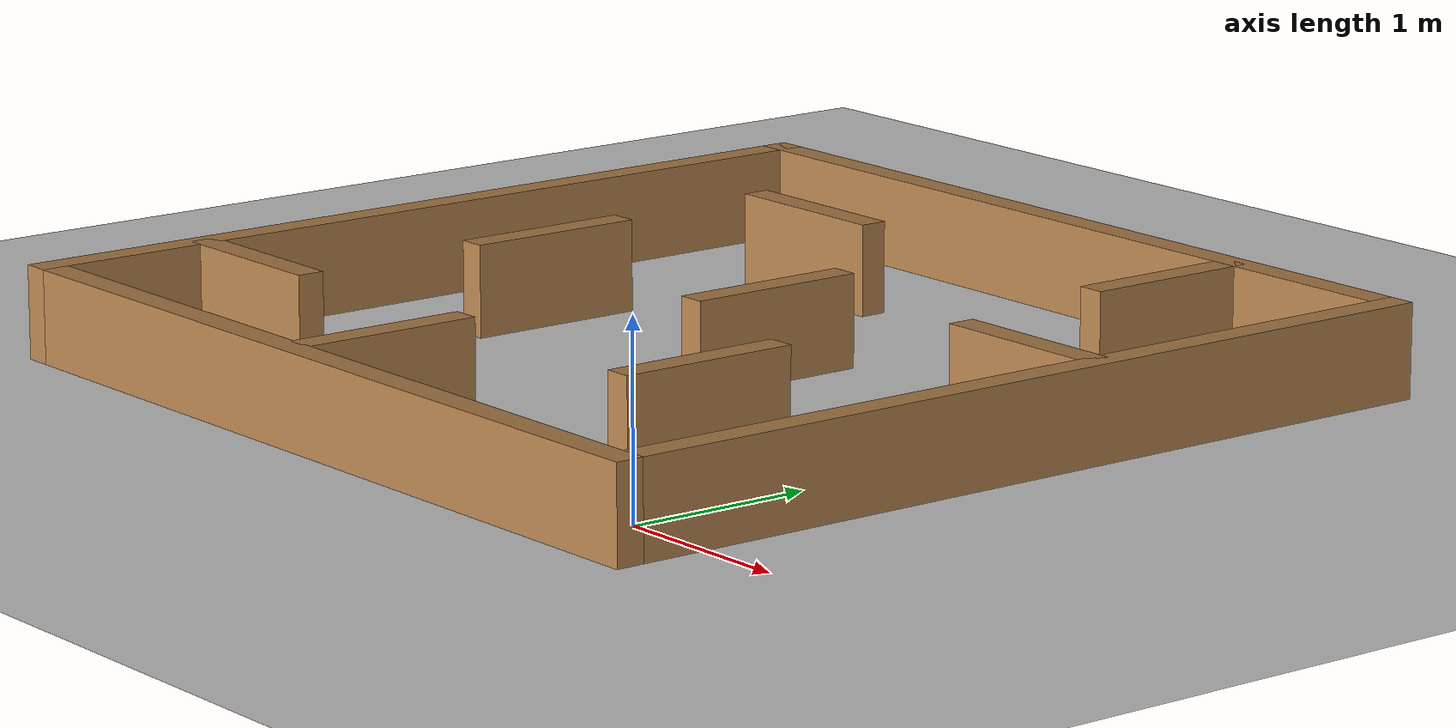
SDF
<sdf version="1.7">
 <world name="default">
  <light name="sun" type="directional">
   <pose>0 0 10 0 -0 0</pose>
   <diffuse>0.8 0.8 0.8 1</diffuse>
   <specular>0.2 0.2 0.2 1</specular>
   <attenuation>
    <range>1000</range>
    <constant>0.9</constant>
    <linear>0.01</linear>
    <quadratic>0.001</quadratic>
   </attenuation>
   <direction>-0.5 0.1 -0.9</direction>
   <spot><inner_angle>0</inner_angle><outer_angle>0</outer_angle><falloff>0</falloff></spot>
  </light>
  <model name="ground_plane">
   <static>1</static>
   <link name="link">
    <collision name="collision">
     <geometry><plane><normal>0 0 1</normal><size>100 100</size></plane></geometry>
     <surface>
      <contact><collide_bitmask>65535</collide_bitmask></contact>
      <friction><ode><mu>100</mu><mu2>50</mu2></ode></friction>
     </surface>
    </collision>
    <visual name="visual">
     <cast_shadows>0</cast_shadows>
     <geometry><plane><normal>0 0 1</normal><size>100 100</size></plane></geometry>
     <material>
      <script><uri>file://media/materials/scripts/gazebo.material</uri><name>Gazebo/Grey</name></script>
     </material>
    </visual>
   </link>
  </model>
  <gravity>0 0 -9.8</gravity>
  <magnetic_field>6e-06 2.3e-05 -4.2e-05</magnetic_field>
  <atmosphere type="adiabatic"/>
  <physics type="ode">
   <max_step_size>0.001</max_step_size>
   <real_time_factor>1</real_time_factor>
   <real_time_update_rate>1000</real_time_update_rate>
  </physics>
  <scene><ambient>0.4 0.4 0.4 1</ambient><background>0.7 0.7 0.7 1</background><shadows>1</shadows></scene>
  <spherical_coordinates>
   <surface_model>EARTH_WGS84</surface_model>
   <latitude_deg>0</latitude_deg>
   <longitude_deg>0</longitude_deg>
   <elevation>0</elevation>
   <heading_deg>0</heading_deg>
  </spherical_coordinates>
  <model name="diff_bot">
   <link name="base_link">
    <inertial>
     <pose>0.055714 0 0.078571 0 -0 0</pose>
     <mass>0.7</mass>
     <inertia>
      <ixx>0.0064169</ixx>
      <ixy>0</ixy>
      <ixz>0.00118929</ixz>
      <iyy>0.00745405</iyy>
      <iyz>0</iyz>
      <izz>0.00876214</izz>
     </inertia>
    </inertial>
    <collision name="base_link_fixed_joint_lump__chassis_collision">
     <pose>0.05 0 0.075 0 -0 0</pose>
     <geometry><box><size>0.3 0.3 0.15</size></box></geometry>
    </collision>
    <collision name="base_link_fixed_joint_lump__caster_wheel_collision_1">
     <pose>0.14 0 0 0 -0 0</pose>
     <geometry><sphere><radius>0.05</radius></sphere></geometry>
     <surface><friction><ode><mu>0.0001</mu><mu2>0.001</mu2></ode></friction></surface>
    </collision>
    <collision name="base_link_fixed_joint_lump__laser_frame_collision_2">
     <pose>0 0 0.175 0 -0 0</pose>
     <geometry><cylinder><length>0.04</length><radius>0.05</radius></cylinder></geometry>
    </collision>
    <visual name="base_link_fixed_joint_lump__chassis_visual">
     <pose>0.05 0 0.075 0 -0 0</pose>
     <geometry><box><size>0.3 0.3 0.15</size></box></geometry>
     <material>
      <script><name>Gazebo/White</name><uri>file://media/materials/scripts/gazebo.material</uri></script>
     </material>
    </visual>
    <visual name="base_link_fixed_joint_lump__caster_wheel_visual_1">
     <pose>0.14 0 0 0 -0 0</pose>
     <geometry><sphere><radius>0.05</radius></sphere></geometry>
     <material>
      <script><name>Gazebo/Black</name><uri>file://media/materials/scripts/gazebo.material</uri></script>
     </material>
    </visual>
    <visual name="base_link_fixed_joint_lump__laser_frame_visual_2">
     <pose>0 0 0.175 0 -0 0</pose>
     <geometry><cylinder><length>0.04</length><radius>0.05</radius></cylinder></geometry>
     <material>
      <script><name>Gazebo/Red</name><uri>file://media/materials/scripts/gazebo.material</uri></script>
     </material>
    </visual>
    <sensor name="top_lidar_sensor" type="ray">
     <visualize>1</visualize>
     <update_rate>10</update_rate>
     <ray>
      <scan>
       <horizontal>
        <samples>360</samples>
        <resolution>1</resolution>
        <min_angle>-3.14</min_angle>
        <max_angle>3.14</max_angle>
       </horizontal>
       <vertical><samples>1</samples><min_angle>0</min_angle><max_angle>0</max_angle></vertical>
      </scan>
      <range><min>0.1</min><max>12</max><resolution>0.01</resolution></range>
     </ray>
     <plugin name="top_lidar_controller" filename="libgazebo_ros_laser.so">
      <topicName>scan</topicName>
      <frameName>laser_frame</frameName>
      <robotNamespace>/</robotNamespace>
     </plugin>
     <pose>0 0 0.175 0 -0 0</pose>
    </sensor>
   </link>
   <joint name="left_wheel_joint" type="revolute">
    <pose relative_to="base_link">0 0.175 0 -1.5708 0 0</pose>
    <parent>base_link</parent>
    <child>left_wheel</child>
    <axis>
     <xyz>0 0 1</xyz>
     <limit><lower>-1e+16</lower><upper>1e+16</upper></limit>
     <dynamics><spring_reference>0</spring_reference><spring_stiffness>0</spring_stiffness></dynamics>
    </axis>
   </joint>
   <link name="left_wheel">
    <pose relative_to="left_wheel_joint">0 0 0 0 -0 0</pose>
    <inertial>
     <mass>0.1</mass>
     <inertia>
      <ixx>7.58333e-05</ixx>
      <ixy>0</ixy>
      <ixz>0</ixz>
      <iyy>7.58333e-05</iyy>
      <iyz>0</iyz>
      <izz>0.000125</izz>
     </inertia>
    </inertial>
    <collision name="left_wheel_collision">
     <geometry><cylinder><length>0.04</length><radius>0.05</radius></cylinder></geometry>
    </collision>
    <visual name="left_wheel_visual">
     <geometry><cylinder><length>0.04</length><radius>0.05</radius></cylinder></geometry>
     <material>
      <script><name>Gazebo/Blue</name><uri>file://media/materials/scripts/gazebo.material</uri></script>
     </material>
    </visual>
   </link>
   <joint name="right_wheel_joint" type="revolute">
    <pose relative_to="base_link">0 -0.175 0 1.5708 -0 0</pose>
    <parent>base_link</parent>
    <child>right_wheel</child>
    <axis>
     <xyz>0 0 -1</xyz>
     <limit><lower>-1e+16</lower><upper>1e+16</upper></limit>
     <dynamics><spring_reference>0</spring_reference><spring_stiffness>0</spring_stiffness></dynamics>
    </axis>
   </joint>
   <link name="right_wheel">
    <pose relative_to="right_wheel_joint">0 0 0 0 -0 0</pose>
    <inertial>
     <mass>0.1</mass>
     <inertia>
      <ixx>7.58333e-05</ixx>
      <ixy>0</ixy>
      <ixz>0</ixz>
      <iyy>7.58333e-05</iyy>
      <iyz>0</iyz>
      <izz>0.000125</izz>
     </inertia>
    </inertial>
    <collision name="right_wheel_collision">
     <geometry><cylinder><length>0.04</length><radius>0.05</radius></cylinder></geometry>
    </collision>
    <visual name="right_wheel_visual">
     <geometry><cylinder><length>0.04</length><radius>0.05</radius></cylinder></geometry>
     <material>
      <script><name>Gazebo/Blue</name><uri>file://media/materials/scripts/gazebo.material</uri></script>
     </material>
    </visual>
   </link>
   <static>0</static>
   <plugin name="diff_drive" filename="libgazebo_ros_diff_drive.so">
    <leftJoint>left_wheel_joint</leftJoint>
    <rightJoint>right_wheel_joint</rightJoint>
    <wheelSeparation>0.35</wheelSeparation>
    <wheelDiameter>0.1</wheelDiameter>
    <wheelAcceleration>1.0</wheelAcceleration>
    <wheelTorque>20</wheelTorque>
    <commandTopic>cmd_vel</commandTopic>
    <odometryTopic>odom</odometryTopic>
    <odometryFrame>odom</odometryFrame>
    <robotBaseFrame>base_link</robotBaseFrame>
    <odometrySource>1</odometrySource>
    <publishWheelTF>1</publishWheelTF>
    <publishOdom>1</publishOdom>
    <publishWheelJointState>1</publishWheelJointState>
    <robotNamespace>/</robotNamespace>
   </plugin>
   <pose>0.071074 -0.023705 0.049995 2.8e-05 -4e-06 -0.087741</pose>
  </model>
  <model name="turtlebot3_plaza">
   <pose>-1.96723 1.99892 0 0 -0 0</pose>
   <link name="Wall_0">
    <collision name="Wall_0_Collision">
     <geometry><box><size>5 0.15 0.5</size></box></geometry>
     <pose>0 0 0.25 0 -0 0</pose>
    </collision>
    <visual name="Wall_0_Visual">
     <pose>0 0 0.25 0 -0 0</pose>
     <geometry><box><size>5 0.15 0.5</size></box></geometry>
     <material>
      <script><uri>file://media/materials/scripts/gazebo.material</uri><name>Gazebo/Wood</name></script>
      <ambient>1 1 1 1</ambient>
     </material>
    </visual>
    <pose>-2.425 0 0 0 -0 1.5708</pose>
   </link>
   <link name="Wall_11">
    <collision name="Wall_11_Collision">
     <geometry><box><size>1 0.15 0.5</size></box></geometry>
     <pose>0 0 0.25 0 -0 0</pose>
    </collision>
    <visual name="Wall_11_Visual">
     <pose>0 0 0.25 0 -0 0</pose>
     <geometry><box><size>1 0.15 0.5</size></box></geometry>
     <material>
      <script><uri>file://media/materials/scripts/gazebo.material</uri><name>Gazebo/Wood</name></script>
      <ambient>1 1 1 1</ambient>
     </material>
    </visual>
    <pose>-1.937 -1.467 0 0 -0 0</pose>
   </link>
   <link name="Wall_13">
    <collision name="Wall_13_Collision">
     <geometry><box><size>1 0.15 0.5</size></box></geometry>
     <pose>0 0 0.25 0 -0 0</pose>
    </collision>
    <visual name="Wall_13_Visual">
     <pose>0 0 0.25 0 -0 0</pose>
     <geometry><box><size>1 0.15 0.5</size></box></geometry>
     <material>
      <script><uri>file://media/materials/scripts/gazebo.material</uri><name>Gazebo/Wood</name></script>
      <ambient>1 1 1 1</ambient>
     </material>
    </visual>
    <pose>-0.22 -1.866 0 0 0 -1.5708</pose>
   </link>
   <link name="Wall_15">
    <collision name="Wall_15_Collision">
     <geometry><box><size>1 0.15 0.5</size></box></geometry>
     <pose>0 0 0.25 0 -0 0</pose>
    </collision>
    <visual name="Wall_15_Visual">
     <pose>0 0 0.25 0 -0 0</pose>
     <geometry><box><size>1 0.15 0.5</size></box></geometry>
     <material>
      <script><uri>file://media/materials/scripts/gazebo.material</uri><name>Gazebo/Wood</name></script>
      <ambient>1 1 1 1</ambient>
     </material>
    </visual>
    <pose>1.195 -1.002 0 0 -0 1.5708</pose>
   </link>
   <link name="Wall_17">
    <collision name="Wall_17_Collision">
     <geometry><box><size>1 0.15 0.5</size></box></geometry>
     <pose>0 0 0.25 0 -0 0</pose>
    </collision>
    <visual name="Wall_17_Visual">
     <pose>0 0 0.25 0 -0 0</pose>
     <geometry><box><size>1 0.15 0.5</size></box></geometry>
     <material>
      <script><uri>file://media/materials/scripts/gazebo.material</uri><name>Gazebo/Wood</name></script>
      <ambient>1 1 1 1</ambient>
     </material>
    </visual>
    <pose>1.288 1.93 0 0 0 -1.5708</pose>
   </link>
   <link name="Wall_19">
    <collision name="Wall_19_Collision">
     <geometry><box><size>1 0.15 0.5</size></box></geometry>
     <pose>0 0 0.25 0 -0 0</pose>
    </collision>
    <visual name="Wall_19_Visual">
     <pose>0 0 0.25 0 -0 0</pose>
     <geometry><box><size>1 0.15 0.5</size></box></geometry>
     <material>
      <script><uri>file://media/materials/scripts/gazebo.material</uri><name>Gazebo/Wood</name></script>
      <ambient>1 1 1 1</ambient>
     </material>
    </visual>
    <pose>1.91128 0.4632 0 0 -0 0</pose>
   </link>
   <link name="Wall_2">
    <collision name="Wall_2_Collision">
     <geometry><box><size>5 0.15 0.5</size></box></geometry>
     <pose>0 0 0.25 0 -0 0</pose>
    </collision>
    <visual name="Wall_2_Visual">
     <pose>0 0 0.25 0 -0 0</pose>
     <geometry><box><size>5 0.15 0.5</size></box></geometry>
     <material>
      <script><uri>file://media/materials/scripts/gazebo.material</uri><name>Gazebo/Wood</name></script>
      <ambient>1 1 1 1</ambient>
     </material>
    </visual>
    <pose>0 2.425 0 0 -0 0</pose>
   </link>
   <link name="Wall_21">
    <collision name="Wall_21_Collision">
     <geometry><box><size>1 0.15 0.5</size></box></geometry>
     <pose>0 0 0.25 0 -0 0</pose>
    </collision>
    <visual name="Wall_21_Visual">
     <pose>0 0 0.25 0 -0 0</pose>
     <geometry><box><size>1 0.15 0.5</size></box></geometry>
     <material>
      <script><uri>file://media/materials/scripts/gazebo.material</uri><name>Gazebo/Wood</name></script>
      <ambient>1 1 1 1</ambient>
     </material>
    </visual>
    <pose>0.204 0.215 0 0 0 -1.5708</pose>
   </link>
   <link name="Wall_3">
    <collision name="Wall_3_Collision">
     <geometry><box><size>5 0.15 0.5</size></box></geometry>
     <pose>0 0 0.25 0 -0 0</pose>
    </collision>
    <visual name="Wall_3_Visual">
     <pose>0 0 0.25 0 -0 0</pose>
     <geometry><box><size>5 0.15 0.5</size></box></geometry>
     <material>
      <script><uri>file://media/materials/scripts/gazebo.material</uri><name>Gazebo/Wood</name></script>
      <ambient>1 1 1 1</ambient>
     </material>
    </visual>
    <pose>2.425 0 0 0 0 -1.5708</pose>
   </link>
   <link name="Wall_4">
    <collision name="Wall_4_Collision">
     <geometry><box><size>5 0.15 0.5</size></box></geometry>
     <pose>0 0 0.25 0 -0 0</pose>
    </collision>
    <visual name="Wall_4_Visual">
     <pose>0 0 0.25 0 -0 0</pose>
     <geometry><box><size>5 0.15 0.5</size></box></geometry>
     <material>
      <script><uri>file://media/materials/scripts/gazebo.material</uri><name>Gazebo/Wood</name></script>
      <ambient>1 1 1 1</ambient>
     </material>
    </visual>
    <pose>0 -2.425 0 0 -0 3.14159</pose>
   </link>
   <link name="Wall_7">
    <collision name="Wall_7_Collision">
     <geometry><box><size>1 0.15 0.5</size></box></geometry>
     <pose>0 0 0.25 0 -0 0</pose>
    </collision>
    <visual name="Wall_7_Visual">
     <pose>0 0 0.25 0 -0 0</pose>
     <geometry><box><size>1 0.15 0.5</size></box></geometry>
     <material>
      <script><uri>file://media/materials/scripts/gazebo.material</uri><name>Gazebo/Wood</name></script>
      <ambient>1 1 1 1</ambient>
     </material>
    </visual>
    <pose>-1.064 1.548 0 0 -0 0</pose>
   </link>
   <link name="Wall_9">
    <collision name="Wall_9_Collision">
     <geometry><box><size>1 0.15 0.5</size></box></geometry>
     <pose>0 0 0.25 0 -0 0</pose>
    </collision>
    <visual name="Wall_9_Visual">
     <pose>0 0 0.25 0 -0 0</pose>
     <geometry><box><size>1 0.15 0.5</size></box></geometry>
     <material>
      <script><uri>file://media/materials/scripts/gazebo.material</uri><name>Gazebo/Wood</name></script>
      <ambient>1 1 1 1</ambient>
     </material>
    </visual>
    <pose>-1.502 0.092 0 0 0 -1.5708</pose>
   </link>
   <static>1</static>
  </model>
 </world>
</sdf>
